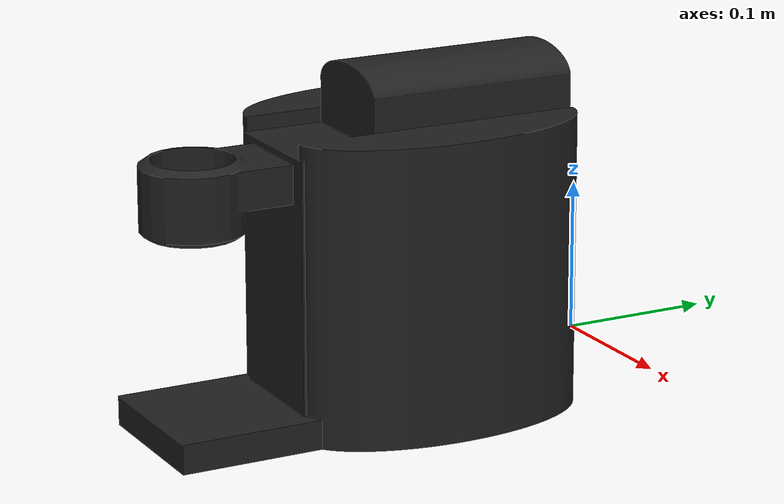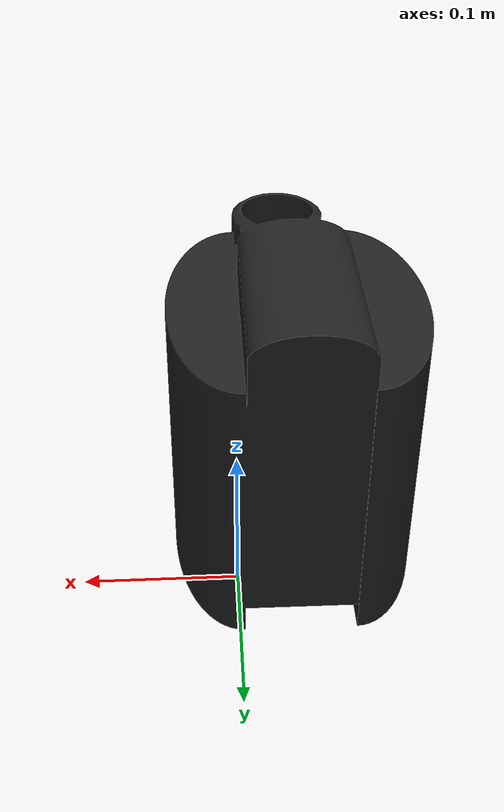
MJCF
<mujoco model="coffee_body">
  <asset>
    <mesh file="meshes/coffee_body.stl" name="coffee_body_mesh" scale="0.01 0.01 0.01"/>
    <texture file="../textures/ceramic.png" name="tex-ceramic"/>
    <material name="ceramic" reflectance="0.5" texrepeat="1 1" texture="tex-ceramic" texuniform="true"/>
  </asset>
  <worldbody>
    <body>
      <body name="collision">
        <geom pos="0 0 0" mesh="coffee_body_mesh" type="mesh" solimp="0.998 0.998 0.001" solref="0.001 1" density="1000" friction="0.95 0.3 0.1" group="1" condim="4" rgba="0.13 0.13 0.13 1" material="ceramic"/>
      </body>
      <body name="visual">
        <geom pos="0 0 0" mesh="coffee_body_mesh" type="mesh" conaffinity="0" contype="0"  group="0" mass="0.0001"/>
        <geom pos="0 0 0" mesh="coffee_body_mesh" type="mesh" conaffinity="0" contype="0"  group="1" mass="0.0001"/>
      </body>
      <site rgba="0 0 0 0" size="0.005" pos="0 0 -0.1105" name="bottom_site"/>
      <site rgba="0 0 0 0" size="0.005" pos="0 0 0.1105" name="top_site"/>
      <site rgba="0 0 0 0" size="0.005" pos="0.0865 0.1005 0" name="horizontal_radius_site"/>
    </body>
  </worldbody>
</mujoco>
